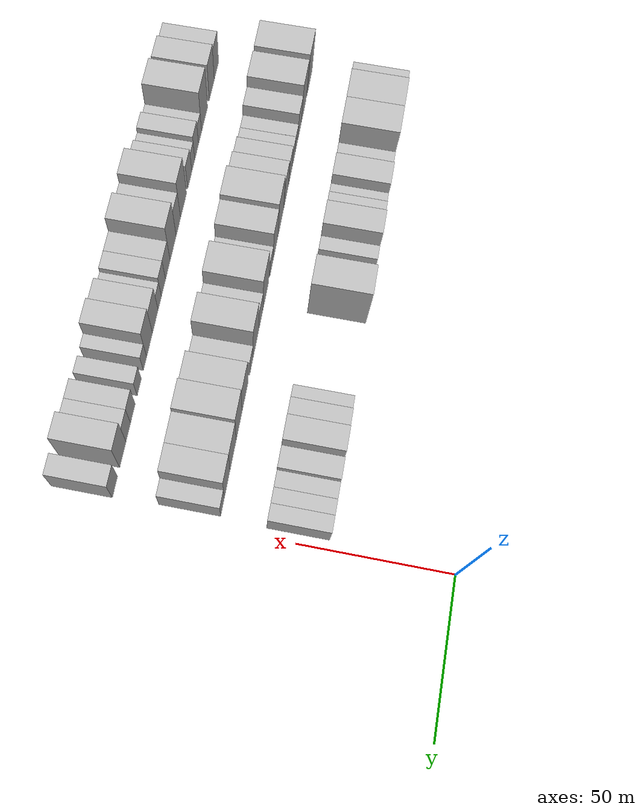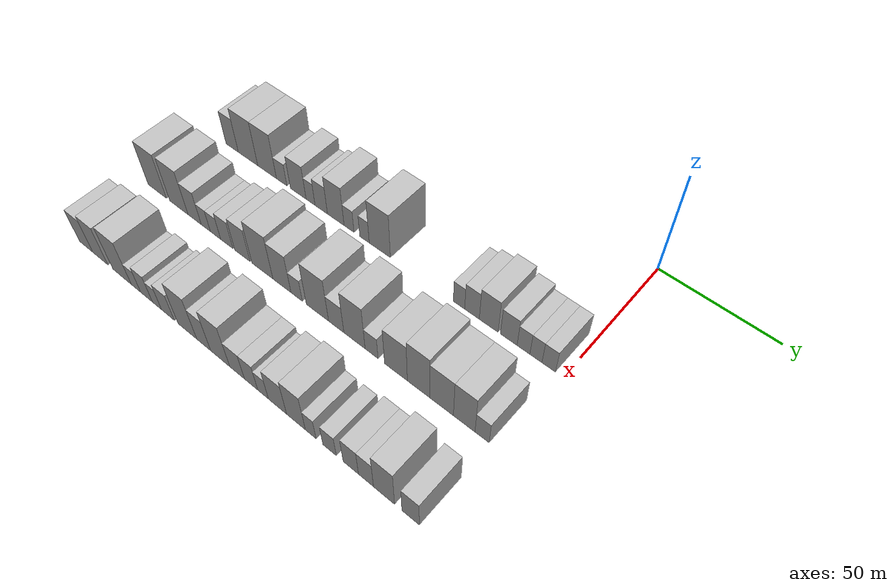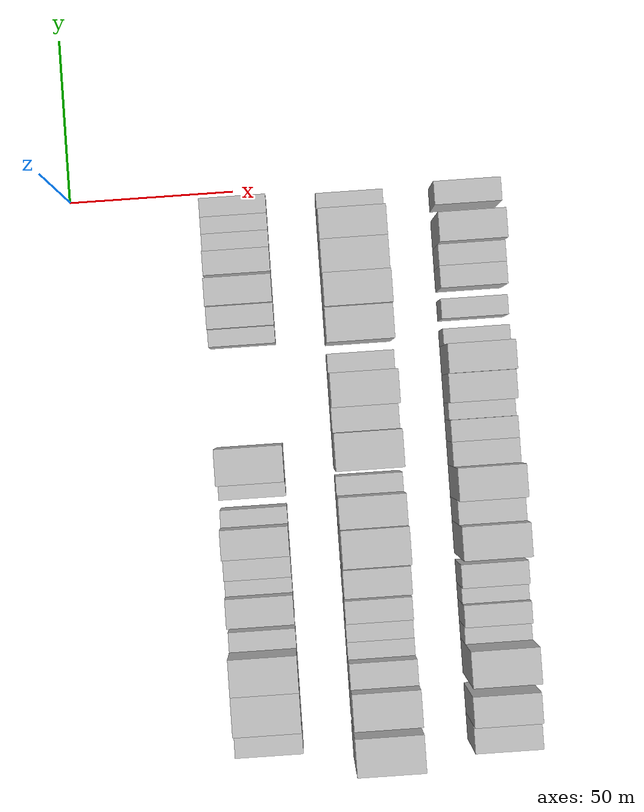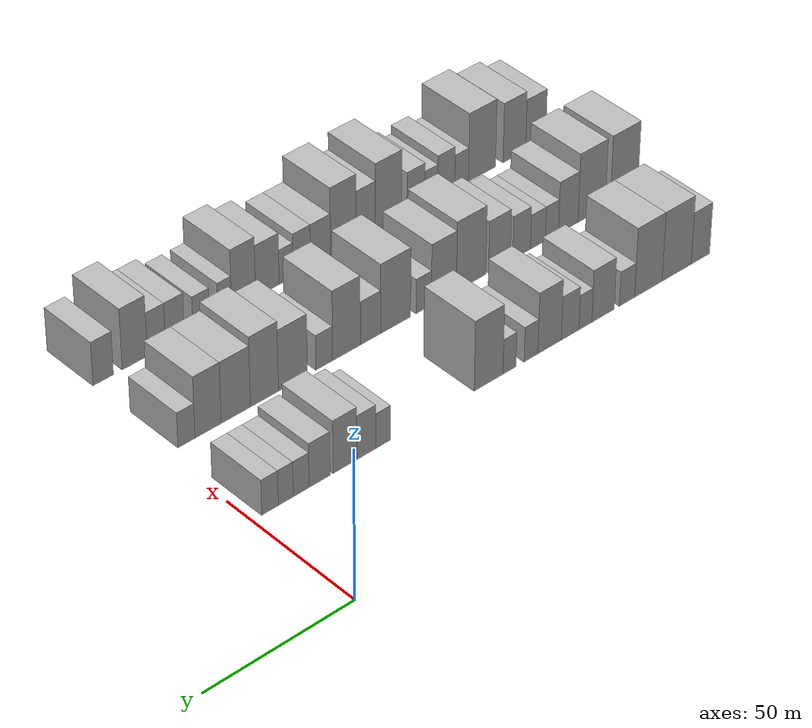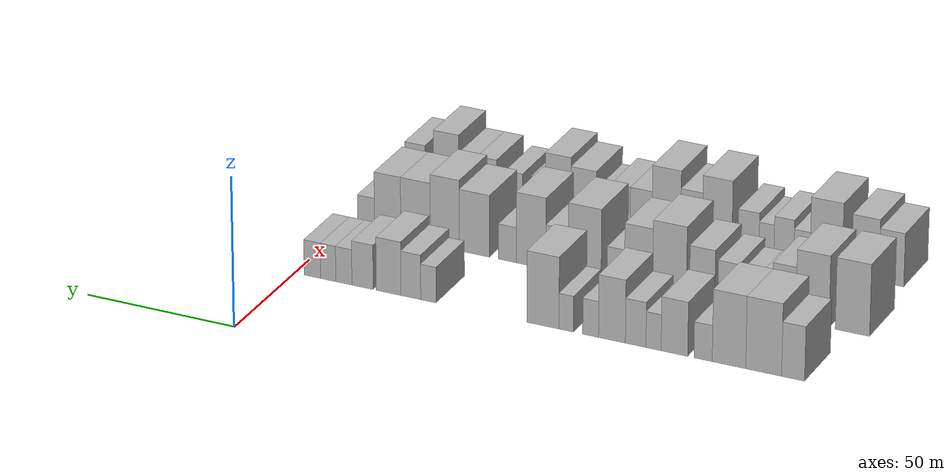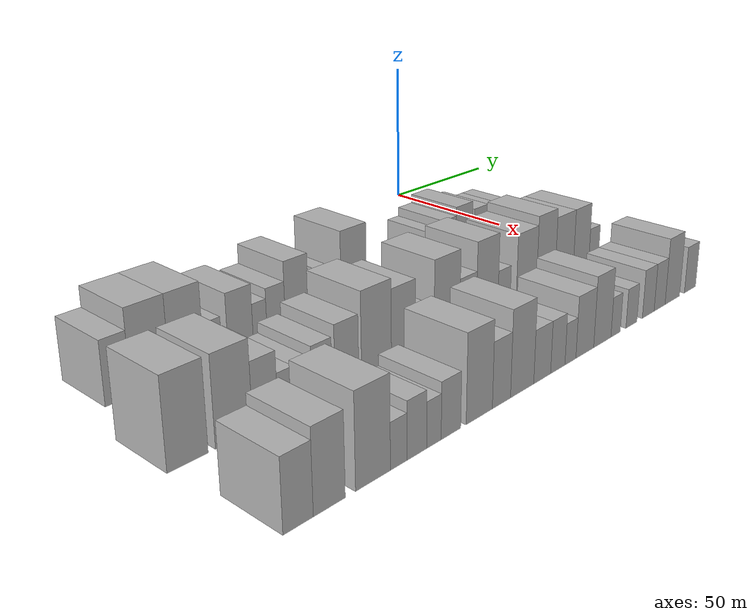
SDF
<sdf version="1.6">
 <world name="default">
  <model name="building_23">
   <static>1</static>
   <pose>50.0000 -164.6802 0 0.000000 0.000000 0.000000</pose>
   <link name="link">
    <pose>0 0 9.00 0 0 0</pose>
    <collision name="collision"><geometry><box><size>20.0000 7.3603 18.0000</size></box></geometry></collision>
    <visual name="visual">
     <cast_shadows>0</cast_shadows>
     <geometry><box><size>20.0000 7.3603 18.0000</size></box></geometry>
     <material>
      <script>
       <uri>model://HANNAS_wall/materials/scripts</uri>
       <uri>model://HANNAS_wall/materials/textures</uri>
       <name>vrc/HANNAS_wall</name>
      </script>
     </material>
    </visual>
   </link>
  </model>
  <model name="building_24">
   <static>1</static>
   <pose>50.0000 -155.2501 0 0.000000 0.000000 0.000000</pose>
   <link name="link">
    <pose>0 0 12.00 0 0 0</pose>
    <collision name="collision"><geometry><box><size>20.0000 11.4999 24.0000</size></box></geometry></collision>
    <visual name="visual">
     <cast_shadows>0</cast_shadows>
     <geometry><box><size>20.0000 11.4999 24.0000</size></box></geometry>
     <material>
      <script>
       <uri>model://HANNAS_wall/materials/scripts</uri>
       <uri>model://HANNAS_wall/materials/textures</uri>
       <name>vrc/HANNAS_wall</name>
      </script>
     </material>
    </visual>
   </link>
  </model>
  <model name="building_25">
   <static>1</static>
   <pose>50.0000 -144.0973 0 0.000000 0.000000 0.000000</pose>
   <link name="link">
    <pose>0 0 12.00 0 0 0</pose>
    <collision name="collision"><geometry><box><size>20.0000 10.8057 24.0000</size></box></geometry></collision>
    <visual name="visual">
     <cast_shadows>0</cast_shadows>
     <geometry><box><size>20.0000 10.8057 24.0000</size></box></geometry>
     <material>
      <script>
       <uri>model://HANNAS_wall/materials/scripts</uri>
       <uri>model://HANNAS_wall/materials/textures</uri>
       <name>vrc/HANNAS_wall</name>
      </script>
     </material>
    </visual>
   </link>
  </model>
  <model name="building_26">
   <static>1</static>
   <pose>50.0000 -135.7476 0 0.000000 0.000000 0.000000</pose>
   <link name="link">
    <pose>0 0 6.00 0 0 0</pose>
    <collision name="collision"><geometry><box><size>20.0000 5.8939 12.0000</size></box></geometry></collision>
    <visual name="visual">
     <cast_shadows>0</cast_shadows>
     <geometry><box><size>20.0000 5.8939 12.0000</size></box></geometry>
     <material>
      <script>
       <uri>model://HANNAS_wall/materials/scripts</uri>
       <uri>model://HANNAS_wall/materials/textures</uri>
       <name>vrc/HANNAS_wall</name>
      </script>
     </material>
    </visual>
   </link>
  </model>
  <model name="building_27">
   <static>1</static>
   <pose>50.0000 -126.4780 0 0.000000 0.000000 0.000000</pose>
   <link name="link">
    <pose>0 0 9.00 0 0 0</pose>
    <collision name="collision"><geometry><box><size>20.0000 8.6452 18.0000</size></box></geometry></collision>
    <visual name="visual">
     <cast_shadows>0</cast_shadows>
     <geometry><box><size>20.0000 8.6452 18.0000</size></box></geometry>
     <material>
      <script>
       <uri>model://HANNAS_wall/materials/scripts</uri>
       <uri>model://HANNAS_wall/materials/textures</uri>
       <name>vrc/HANNAS_wall</name>
      </script>
     </material>
    </visual>
   </link>
  </model>
  <model name="building_28">
   <static>1</static>
   <pose>50.0000 -119.6944 0 0.000000 0.000000 0.000000</pose>
   <link name="link">
    <pose>0 0 6.00 0 0 0</pose>
    <collision name="collision"><geometry><box><size>20.0000 4.9221 12.0000</size></box></geometry></collision>
    <visual name="visual">
     <cast_shadows>0</cast_shadows>
     <geometry><box><size>20.0000 4.9221 12.0000</size></box></geometry>
     <material>
      <script>
       <uri>model://HANNAS_wall/materials/scripts</uri>
       <uri>model://HANNAS_wall/materials/textures</uri>
       <name>vrc/HANNAS_wall</name>
      </script>
     </material>
    </visual>
   </link>
  </model>
  <model name="building_29">
   <static>1</static>
   <pose>50.0000 -113.8767 0 0.000000 0.000000 0.000000</pose>
   <link name="link">
    <pose>0 0 7.50 0 0 0</pose>
    <collision name="collision"><geometry><box><size>20.0000 6.7132 15.0000</size></box></geometry></collision>
    <visual name="visual">
     <cast_shadows>0</cast_shadows>
     <geometry><box><size>20.0000 6.7132 15.0000</size></box></geometry>
     <material>
      <script>
       <uri>model://HANNAS_wall/materials/scripts</uri>
       <uri>model://HANNAS_wall/materials/textures</uri>
       <name>vrc/HANNAS_wall</name>
      </script>
     </material>
    </visual>
   </link>
  </model>
  <model name="building_30">
   <static>1</static>
   <pose>50.0000 -106.1210 0 0.000000 0.000000 0.000000</pose>
   <link name="link">
    <pose>0 0 10.50 0 0 0</pose>
    <collision name="collision"><geometry><box><size>20.0000 8.7982 21.0000</size></box></geometry></collision>
    <visual name="visual">
     <cast_shadows>0</cast_shadows>
     <geometry><box><size>20.0000 8.7982 21.0000</size></box></geometry>
     <material>
      <script>
       <uri>model://HANNAS_wall/materials/scripts</uri>
       <uri>model://HANNAS_wall/materials/textures</uri>
       <name>vrc/HANNAS_wall</name>
      </script>
     </material>
    </visual>
   </link>
  </model>
  <model name="building_31">
   <static>1</static>
   <pose>50.0000 -99.1354 0 0.000000 0.000000 0.000000</pose>
   <link name="link">
    <pose>0 0 6.00 0 0 0</pose>
    <collision name="collision"><geometry><box><size>20.0000 5.1730 12.0000</size></box></geometry></collision>
    <visual name="visual">
     <cast_shadows>0</cast_shadows>
     <geometry><box><size>20.0000 5.1730 12.0000</size></box></geometry>
     <material>
      <script>
       <uri>model://HANNAS_wall/materials/scripts</uri>
       <uri>model://HANNAS_wall/materials/textures</uri>
       <name>vrc/HANNAS_wall</name>
      </script>
     </material>
    </visual>
   </link>
  </model>
  <model name="building_32">
   <static>1</static>
   <pose>50.0000 -91.1414 0 0.000000 0.000000 0.000000</pose>
   <link name="link">
    <pose>0 0 6.00 0 0 0</pose>
    <collision name="collision"><geometry><box><size>20.0000 4.8150 12.0000</size></box></geometry></collision>
    <visual name="visual">
     <cast_shadows>0</cast_shadows>
     <geometry><box><size>20.0000 4.8150 12.0000</size></box></geometry>
     <material>
      <script>
       <uri>model://HANNAS_wall/materials/scripts</uri>
       <uri>model://HANNAS_wall/materials/textures</uri>
       <name>vrc/HANNAS_wall</name>
      </script>
     </material>
    </visual>
   </link>
  </model>
  <model name="building_33">
   <static>1</static>
   <pose>50.0000 -83.4060 0 0.000000 0.000000 0.000000</pose>
   <link name="link">
    <pose>0 0 12.00 0 0 0</pose>
    <collision name="collision"><geometry><box><size>20.0000 10.6557 24.0000</size></box></geometry></collision>
    <visual name="visual">
     <cast_shadows>0</cast_shadows>
     <geometry><box><size>20.0000 10.6557 24.0000</size></box></geometry>
     <material>
      <script>
       <uri>model://HANNAS_wall/materials/scripts</uri>
       <uri>model://HANNAS_wall/materials/textures</uri>
       <name>vrc/HANNAS_wall</name>
      </script>
     </material>
    </visual>
   </link>
  </model>
  <model name="building_34">
   <static>1</static>
   <pose>50.0000 -45.3212 0 0.000000 0.000000 0.000000</pose>
   <link name="link">
    <pose>0 0 6.00 0 0 0</pose>
    <collision name="collision"><geometry><box><size>20.0000 5.1713 12.0000</size></box></geometry></collision>
    <visual name="visual">
     <cast_shadows>0</cast_shadows>
     <geometry><box><size>20.0000 5.1713 12.0000</size></box></geometry>
     <material>
      <script>
       <uri>model://HANNAS_wall/materials/scripts</uri>
       <uri>model://HANNAS_wall/materials/textures</uri>
       <name>vrc/HANNAS_wall</name>
      </script>
     </material>
    </visual>
   </link>
  </model>
  <model name="building_35">
   <static>1</static>
   <pose>50.0000 -39.4127 0 0.000000 0.000000 0.000000</pose>
   <link name="link">
    <pose>0 0 7.50 0 0 0</pose>
    <collision name="collision"><geometry><box><size>20.0000 6.6456 15.0000</size></box></geometry></collision>
    <visual name="visual">
     <cast_shadows>0</cast_shadows>
     <geometry><box><size>20.0000 6.6456 15.0000</size></box></geometry>
     <material>
      <script>
       <uri>model://HANNAS_wall/materials/scripts</uri>
       <uri>model://HANNAS_wall/materials/textures</uri>
       <name>vrc/HANNAS_wall</name>
      </script>
     </material>
    </visual>
   </link>
  </model>
  <model name="building_36">
   <static>1</static>
   <pose>50.0000 -31.9131 0 0.000000 0.000000 0.000000</pose>
   <link name="link">
    <pose>0 0 9.00 0 0 0</pose>
    <collision name="collision"><geometry><box><size>20.0000 8.3536 18.0000</size></box></geometry></collision>
    <visual name="visual">
     <cast_shadows>0</cast_shadows>
     <geometry><box><size>20.0000 8.3536 18.0000</size></box></geometry>
     <material>
      <script>
       <uri>model://HANNAS_wall/materials/scripts</uri>
       <uri>model://HANNAS_wall/materials/textures</uri>
       <name>vrc/HANNAS_wall</name>
      </script>
     </material>
    </visual>
   </link>
  </model>
  <model name="building_37">
   <static>1</static>
   <pose>50.0000 -23.1117 0 0.000000 0.000000 0.000000</pose>
   <link name="link">
    <pose>0 0 7.50 0 0 0</pose>
    <collision name="collision"><geometry><box><size>20.0000 7.2491 15.0000</size></box></geometry></collision>
    <visual name="visual">
     <cast_shadows>0</cast_shadows>
     <geometry><box><size>20.0000 7.2491 15.0000</size></box></geometry>
     <material>
      <script>
       <uri>model://HANNAS_wall/materials/scripts</uri>
       <uri>model://HANNAS_wall/materials/textures</uri>
       <name>vrc/HANNAS_wall</name>
      </script>
     </material>
    </visual>
   </link>
  </model>
  <model name="building_38">
   <static>1</static>
   <pose>50.0000 -16.7478 0 0.000000 0.000000 0.000000</pose>
   <link name="link">
    <pose>0 0 6.00 0 0 0</pose>
    <collision name="collision"><geometry><box><size>20.0000 5.4787 12.0000</size></box></geometry></collision>
    <visual name="visual">
     <cast_shadows>0</cast_shadows>
     <geometry><box><size>20.0000 5.4787 12.0000</size></box></geometry>
     <material>
      <script>
       <uri>model://HANNAS_wall/materials/scripts</uri>
       <uri>model://HANNAS_wall/materials/textures</uri>
       <name>vrc/HANNAS_wall</name>
      </script>
     </material>
    </visual>
   </link>
  </model>
  <model name="building_39">
   <static>1</static>
   <pose>50.0000 -11.4639 0 0.000000 0.000000 0.000000</pose>
   <link name="link">
    <pose>0 0 6.00 0 0 0</pose>
    <collision name="collision"><geometry><box><size>20.0000 5.0892 12.0000</size></box></geometry></collision>
    <visual name="visual">
     <cast_shadows>0</cast_shadows>
     <geometry><box><size>20.0000 5.0892 12.0000</size></box></geometry>
     <material>
      <script>
       <uri>model://HANNAS_wall/materials/scripts</uri>
       <uri>model://HANNAS_wall/materials/textures</uri>
       <name>vrc/HANNAS_wall</name>
      </script>
     </material>
    </visual>
   </link>
  </model>
  <model name="building_40">
   <static>1</static>
   <pose>50.0000 -6.0964 0 0.000000 0.000000 0.000000</pose>
   <link name="link">
    <pose>0 0 6.00 0 0 0</pose>
    <collision name="collision"><geometry><box><size>20.0000 5.6457 12.0000</size></box></geometry></collision>
    <visual name="visual">
     <cast_shadows>0</cast_shadows>
     <geometry><box><size>20.0000 5.6457 12.0000</size></box></geometry>
     <material>
      <script>
       <uri>model://HANNAS_wall/materials/scripts</uri>
       <uri>model://HANNAS_wall/materials/textures</uri>
       <name>vrc/HANNAS_wall</name>
      </script>
     </material>
    </visual>
   </link>
  </model>
  <model name="building_100">
   <static>1</static>
   <pose>85.0000 -169.3282 0 0.000000 0.000000 0.000000</pose>
   <link name="link">
    <pose>0 0 12.00 0 0 0</pose>
    <collision name="collision"><geometry><box><size>20.0000 11.0988 24.0000</size></box></geometry></collision>
    <visual name="visual">
     <cast_shadows>0</cast_shadows>
     <geometry><box><size>20.0000 11.0988 24.0000</size></box></geometry>
     <material>
      <script>
       <uri>model://HANNAS_wall/materials/scripts</uri>
       <uri>model://HANNAS_wall/materials/textures</uri>
       <name>vrc/HANNAS_wall</name>
      </script>
     </material>
    </visual>
   </link>
  </model>
  <model name="building_101">
   <static>1</static>
   <pose>85.0000 -156.3685 0 0.000000 0.000000 0.000000</pose>
   <link name="link">
    <pose>0 0 12.00 0 0 0</pose>
    <collision name="collision"><geometry><box><size>20.0000 10.8207 24.0000</size></box></geometry></collision>
    <visual name="visual">
     <cast_shadows>0</cast_shadows>
     <geometry><box><size>20.0000 10.8207 24.0000</size></box></geometry>
     <material>
      <script>
       <uri>model://HANNAS_wall/materials/scripts</uri>
       <uri>model://HANNAS_wall/materials/textures</uri>
       <name>vrc/HANNAS_wall</name>
      </script>
     </material>
    </visual>
   </link>
  </model>
  <model name="building_102">
   <static>1</static>
   <pose>85.0000 -147.1111 0 0.000000 0.000000 0.000000</pose>
   <link name="link">
    <pose>0 0 9.00 0 0 0</pose>
    <collision name="collision"><geometry><box><size>20.0000 7.6941 18.0000</size></box></geometry></collision>
    <visual name="visual">
     <cast_shadows>0</cast_shadows>
     <geometry><box><size>20.0000 7.6941 18.0000</size></box></geometry>
     <material>
      <script>
       <uri>model://HANNAS_wall/materials/scripts</uri>
       <uri>model://HANNAS_wall/materials/textures</uri>
       <name>vrc/HANNAS_wall</name>
      </script>
     </material>
    </visual>
   </link>
  </model>
  <model name="building_103">
   <static>1</static>
   <pose>85.0000 -140.6866 0 0.000000 0.000000 0.000000</pose>
   <link name="link">
    <pose>0 0 6.00 0 0 0</pose>
    <collision name="collision"><geometry><box><size>20.0000 5.1549 12.0000</size></box></geometry></collision>
    <visual name="visual">
     <cast_shadows>0</cast_shadows>
     <geometry><box><size>20.0000 5.1549 12.0000</size></box></geometry>
     <material>
      <script>
       <uri>model://HANNAS_wall/materials/scripts</uri>
       <uri>model://HANNAS_wall/materials/textures</uri>
       <name>vrc/HANNAS_wall</name>
      </script>
     </material>
    </visual>
   </link>
  </model>
  <model name="building_104">
   <static>1</static>
   <pose>85.0000 -135.2049 0 0.000000 0.000000 0.000000</pose>
   <link name="link">
    <pose>0 0 6.00 0 0 0</pose>
    <collision name="collision"><geometry><box><size>20.0000 5.8084 12.0000</size></box></geometry></collision>
    <visual name="visual">
     <cast_shadows>0</cast_shadows>
     <geometry><box><size>20.0000 5.8084 12.0000</size></box></geometry>
     <material>
      <script>
       <uri>model://HANNAS_wall/materials/scripts</uri>
       <uri>model://HANNAS_wall/materials/textures</uri>
       <name>vrc/HANNAS_wall</name>
      </script>
     </material>
    </visual>
   </link>
  </model>
  <model name="building_105">
   <static>1</static>
   <pose>85.0000 -128.8961 0 0.000000 0.000000 0.000000</pose>
   <link name="link">
    <pose>0 0 7.50 0 0 0</pose>
    <collision name="collision"><geometry><box><size>20.0000 6.8091 15.0000</size></box></geometry></collision>
    <visual name="visual">
     <cast_shadows>0</cast_shadows>
     <geometry><box><size>20.0000 6.8091 15.0000</size></box></geometry>
     <material>
      <script>
       <uri>model://HANNAS_wall/materials/scripts</uri>
       <uri>model://HANNAS_wall/materials/textures</uri>
       <name>vrc/HANNAS_wall</name>
      </script>
     </material>
    </visual>
   </link>
  </model>
  <model name="building_106">
   <static>1</static>
   <pose>85.0000 -120.3109 0 0.000000 0.000000 0.000000</pose>
   <link name="link">
    <pose>0 0 9.00 0 0 0</pose>
    <collision name="collision"><geometry><box><size>20.0000 8.3613 18.0000</size></box></geometry></collision>
    <visual name="visual">
     <cast_shadows>0</cast_shadows>
     <geometry><box><size>20.0000 8.3613 18.0000</size></box></geometry>
     <material>
      <script>
       <uri>model://HANNAS_wall/materials/scripts</uri>
       <uri>model://HANNAS_wall/materials/textures</uri>
       <name>vrc/HANNAS_wall</name>
      </script>
     </material>
    </visual>
   </link>
  </model>
  <model name="building_107">
   <static>1</static>
   <pose>85.0000 -109.5579 0 0.000000 0.000000 0.000000</pose>
   <link name="link">
    <pose>0 0 12.00 0 0 0</pose>
    <collision name="collision"><geometry><box><size>20.0000 11.1447 24.0000</size></box></geometry></collision>
    <visual name="visual">
     <cast_shadows>0</cast_shadows>
     <geometry><box><size>20.0000 11.1447 24.0000</size></box></geometry>
     <material>
      <script>
       <uri>model://HANNAS_wall/materials/scripts</uri>
       <uri>model://HANNAS_wall/materials/textures</uri>
       <name>vrc/HANNAS_wall</name>
      </script>
     </material>
    </visual>
   </link>
  </model>
  <model name="building_108">
   <static>1</static>
   <pose>85.0000 -99.3019 0 0.000000 0.000000 0.000000</pose>
   <link name="link">
    <pose>0 0 10.50 0 0 0</pose>
    <collision name="collision"><geometry><box><size>20.0000 9.3673 21.0000</size></box></geometry></collision>
    <visual name="visual">
     <cast_shadows>0</cast_shadows>
     <geometry><box><size>20.0000 9.3673 21.0000</size></box></geometry>
     <material>
      <script>
       <uri>model://HANNAS_wall/materials/scripts</uri>
       <uri>model://HANNAS_wall/materials/textures</uri>
       <name>vrc/HANNAS_wall</name>
      </script>
     </material>
    </visual>
   </link>
  </model>
  <model name="building_109">
   <static>1</static>
   <pose>85.0000 -91.7395 0 0.000000 0.000000 0.000000</pose>
   <link name="link">
    <pose>0 0 6.00 0 0 0</pose>
    <collision name="collision"><geometry><box><size>20.0000 5.7574 12.0000</size></box></geometry></collision>
    <visual name="visual">
     <cast_shadows>0</cast_shadows>
     <geometry><box><size>20.0000 5.7574 12.0000</size></box></geometry>
     <material>
      <script>
       <uri>model://HANNAS_wall/materials/scripts</uri>
       <uri>model://HANNAS_wall/materials/textures</uri>
       <name>vrc/HANNAS_wall</name>
      </script>
     </material>
    </visual>
   </link>
  </model>
  <model name="building_110">
   <static>1</static>
   <pose>85.0000 -81.3385 0 0.000000 0.000000 0.000000</pose>
   <link name="link">
    <pose>0 0 12.00 0 0 0</pose>
    <collision name="collision"><geometry><box><size>20.0000 11.0445 24.0000</size></box></geometry></collision>
    <visual name="visual">
     <cast_shadows>0</cast_shadows>
     <geometry><box><size>20.0000 11.0445 24.0000</size></box></geometry>
     <material>
      <script>
       <uri>model://HANNAS_wall/materials/scripts</uri>
       <uri>model://HANNAS_wall/materials/textures</uri>
       <name>vrc/HANNAS_wall</name>
      </script>
     </material>
    </visual>
   </link>
  </model>
  <model name="building_111">
   <static>1</static>
   <pose>85.0000 -72.1030 0 0.000000 0.000000 0.000000</pose>
   <link name="link">
    <pose>0 0 7.50 0 0 0</pose>
    <collision name="collision"><geometry><box><size>20.0000 7.4266 15.0000</size></box></geometry></collision>
    <visual name="visual">
     <cast_shadows>0</cast_shadows>
     <geometry><box><size>20.0000 7.4266 15.0000</size></box></geometry>
     <material>
      <script>
       <uri>model://HANNAS_wall/materials/scripts</uri>
       <uri>model://HANNAS_wall/materials/textures</uri>
       <name>vrc/HANNAS_wall</name>
      </script>
     </material>
    </visual>
   </link>
  </model>
  <model name="building_112">
   <static>1</static>
   <pose>85.0000 -63.3589 0 0.000000 0.000000 0.000000</pose>
   <link name="link">
    <pose>0 0 12.00 0 0 0</pose>
    <collision name="collision"><geometry><box><size>20.0000 10.0616 24.0000</size></box></geometry></collision>
    <visual name="visual">
     <cast_shadows>0</cast_shadows>
     <geometry><box><size>20.0000 10.0616 24.0000</size></box></geometry>
     <material>
      <script>
       <uri>model://HANNAS_wall/materials/scripts</uri>
       <uri>model://HANNAS_wall/materials/textures</uri>
       <name>vrc/HANNAS_wall</name>
      </script>
     </material>
    </visual>
   </link>
  </model>
  <model name="building_113">
   <static>1</static>
   <pose>85.0000 -55.3316 0 0.000000 0.000000 0.000000</pose>
   <link name="link">
    <pose>0 0 6.00 0 0 0</pose>
    <collision name="collision"><geometry><box><size>20.0000 5.9931 12.0000</size></box></geometry></collision>
    <visual name="visual">
     <cast_shadows>0</cast_shadows>
     <geometry><box><size>20.0000 5.9931 12.0000</size></box></geometry>
     <material>
      <script>
       <uri>model://HANNAS_wall/materials/scripts</uri>
       <uri>model://HANNAS_wall/materials/textures</uri>
       <name>vrc/HANNAS_wall</name>
      </script>
     </material>
    </visual>
   </link>
  </model>
  <model name="building_114">
   <static>1</static>
   <pose>85.0000 -44.1902 0 0.000000 0.000000 0.000000</pose>
   <link name="link">
    <pose>0 0 10.50 0 0 0</pose>
    <collision name="collision"><geometry><box><size>20.0000 10.2897 21.0000</size></box></geometry></collision>
    <visual name="visual">
     <cast_shadows>0</cast_shadows>
     <geometry><box><size>20.0000 10.2897 21.0000</size></box></geometry>
     <material>
      <script>
       <uri>model://HANNAS_wall/materials/scripts</uri>
       <uri>model://HANNAS_wall/materials/textures</uri>
       <name>vrc/HANNAS_wall</name>
      </script>
     </material>
    </visual>
   </link>
  </model>
  <model name="building_115">
   <static>1</static>
   <pose>85.0000 -34.1086 0 0.000000 0.000000 0.000000</pose>
   <link name="link">
    <pose>0 0 12.00 0 0 0</pose>
    <collision name="collision"><geometry><box><size>20.0000 9.8735 24.0000</size></box></geometry></collision>
    <visual name="visual">
     <cast_shadows>0</cast_shadows>
     <geometry><box><size>20.0000 9.8735 24.0000</size></box></geometry>
     <material>
      <script>
       <uri>model://HANNAS_wall/materials/scripts</uri>
       <uri>model://HANNAS_wall/materials/textures</uri>
       <name>vrc/HANNAS_wall</name>
      </script>
     </material>
    </visual>
   </link>
  </model>
  <model name="building_116">
   <static>1</static>
   <pose>85.0000 -24.1066 0 0.000000 0.000000 0.000000</pose>
   <link name="link">
    <pose>0 0 10.50 0 0 0</pose>
    <collision name="collision"><geometry><box><size>20.0000 10.1305 21.0000</size></box></geometry></collision>
    <visual name="visual">
     <cast_shadows>0</cast_shadows>
     <geometry><box><size>20.0000 10.1305 21.0000</size></box></geometry>
     <material>
      <script>
       <uri>model://HANNAS_wall/materials/scripts</uri>
       <uri>model://HANNAS_wall/materials/textures</uri>
       <name>vrc/HANNAS_wall</name>
      </script>
     </material>
    </visual>
   </link>
  </model>
  <model name="building_117">
   <static>1</static>
   <pose>85.0000 -14.5325 0 0.000000 0.000000 0.000000</pose>
   <link name="link">
    <pose>0 0 10.50 0 0 0</pose>
    <collision name="collision"><geometry><box><size>20.0000 9.0177 21.0000</size></box></geometry></collision>
    <visual name="visual">
     <cast_shadows>0</cast_shadows>
     <geometry><box><size>20.0000 9.0177 21.0000</size></box></geometry>
     <material>
      <script>
       <uri>model://HANNAS_wall/materials/scripts</uri>
       <uri>model://HANNAS_wall/materials/textures</uri>
       <name>vrc/HANNAS_wall</name>
      </script>
     </material>
    </visual>
   </link>
  </model>
  <model name="building_118">
   <static>1</static>
   <pose>85.0000 -7.1090 0 0.000000 0.000000 0.000000</pose>
   <link name="link">
    <pose>0 0 6.00 0 0 0</pose>
    <collision name="collision"><geometry><box><size>20.0000 5.8294 12.0000</size></box></geometry></collision>
    <visual name="visual">
     <cast_shadows>0</cast_shadows>
     <geometry><box><size>20.0000 5.8294 12.0000</size></box></geometry>
     <material>
      <script>
       <uri>model://HANNAS_wall/materials/scripts</uri>
       <uri>model://HANNAS_wall/materials/textures</uri>
       <name>vrc/HANNAS_wall</name>
      </script>
     </material>
    </visual>
   </link>
  </model>
  <model name="building_172">
   <static>1</static>
   <pose>120.0000 -167.8748 0 0.000000 0.000000 0.000000</pose>
   <link name="link">
    <pose>0 0 9.00 0 0 0</pose>
    <collision name="collision"><geometry><box><size>20.0000 8.1332 18.0000</size></box></geometry></collision>
    <visual name="visual">
     <cast_shadows>0</cast_shadows>
     <geometry><box><size>20.0000 8.1332 18.0000</size></box></geometry>
     <material>
      <script>
       <uri>model://HANNAS_wall/materials/scripts</uri>
       <uri>model://HANNAS_wall/materials/textures</uri>
       <name>vrc/HANNAS_wall</name>
      </script>
     </material>
    </visual>
   </link>
  </model>
  <model name="building_173">
   <static>1</static>
   <pose>120.0000 -159.2900 0 0.000000 0.000000 0.000000</pose>
   <link name="link">
    <pose>0 0 10.50 0 0 0</pose>
    <collision name="collision"><geometry><box><size>20.0000 9.0364 21.0000</size></box></geometry></collision>
    <visual name="visual">
     <cast_shadows>0</cast_shadows>
     <geometry><box><size>20.0000 9.0364 21.0000</size></box></geometry>
     <material>
      <script>
       <uri>model://HANNAS_wall/materials/scripts</uri>
       <uri>model://HANNAS_wall/materials/textures</uri>
       <name>vrc/HANNAS_wall</name>
      </script>
     </material>
    </visual>
   </link>
  </model>
  <model name="building_174">
   <static>1</static>
   <pose>120.0000 -146.4342 0 0.000000 0.000000 0.000000</pose>
   <link name="link">
    <pose>0 0 12.00 0 0 0</pose>
    <collision name="collision"><geometry><box><size>20.0000 10.6753 24.0000</size></box></geometry></collision>
    <visual name="visual">
     <cast_shadows>0</cast_shadows>
     <geometry><box><size>20.0000 10.6753 24.0000</size></box></geometry>
     <material>
      <script>
       <uri>model://HANNAS_wall/materials/scripts</uri>
       <uri>model://HANNAS_wall/materials/textures</uri>
       <name>vrc/HANNAS_wall</name>
      </script>
     </material>
    </visual>
   </link>
  </model>
  <model name="building_175">
   <static>1</static>
   <pose>120.0000 -138.4185 0 0.000000 0.000000 0.000000</pose>
   <link name="link">
    <pose>0 0 6.00 0 0 0</pose>
    <collision name="collision"><geometry><box><size>20.0000 5.3561 12.0000</size></box></geometry></collision>
    <visual name="visual">
     <cast_shadows>0</cast_shadows>
     <geometry><box><size>20.0000 5.3561 12.0000</size></box></geometry>
     <material>
      <script>
       <uri>model://HANNAS_wall/materials/scripts</uri>
       <uri>model://HANNAS_wall/materials/textures</uri>
       <name>vrc/HANNAS_wall</name>
      </script>
     </material>
    </visual>
   </link>
  </model>
  <model name="building_176">
   <static>1</static>
   <pose>120.0000 -132.4523 0 0.000000 0.000000 0.000000</pose>
   <link name="link">
    <pose>0 0 7.50 0 0 0</pose>
    <collision name="collision"><geometry><box><size>20.0000 6.5764 15.0000</size></box></geometry></collision>
    <visual name="visual">
     <cast_shadows>0</cast_shadows>
     <geometry><box><size>20.0000 6.5764 15.0000</size></box></geometry>
     <material>
      <script>
       <uri>model://HANNAS_wall/materials/scripts</uri>
       <uri>model://HANNAS_wall/materials/textures</uri>
       <name>vrc/HANNAS_wall</name>
      </script>
     </material>
    </visual>
   </link>
  </model>
  <model name="building_177">
   <static>1</static>
   <pose>120.0000 -126.6715 0 0.000000 0.000000 0.000000</pose>
   <link name="link">
    <pose>0 0 6.00 0 0 0</pose>
    <collision name="collision"><geometry><box><size>20.0000 4.9851 12.0000</size></box></geometry></collision>
    <visual name="visual">
     <cast_shadows>0</cast_shadows>
     <geometry><box><size>20.0000 4.9851 12.0000</size></box></geometry>
     <material>
      <script>
       <uri>model://HANNAS_wall/materials/scripts</uri>
       <uri>model://HANNAS_wall/materials/textures</uri>
       <name>vrc/HANNAS_wall</name>
      </script>
     </material>
    </visual>
   </link>
  </model>
  <model name="building_178">
   <static>1</static>
   <pose>120.0000 -120.6826 0 0.000000 0.000000 0.000000</pose>
   <link name="link">
    <pose>0 0 7.50 0 0 0</pose>
    <collision name="collision"><geometry><box><size>20.0000 6.9928 15.0000</size></box></geometry></collision>
    <visual name="visual">
     <cast_shadows>0</cast_shadows>
     <geometry><box><size>20.0000 6.9928 15.0000</size></box></geometry>
     <material>
      <script>
       <uri>model://HANNAS_wall/materials/scripts</uri>
       <uri>model://HANNAS_wall/materials/textures</uri>
       <name>vrc/HANNAS_wall</name>
      </script>
     </material>
    </visual>
   </link>
  </model>
  <model name="building_179">
   <static>1</static>
   <pose>120.0000 -110.2126 0 0.000000 0.000000 0.000000</pose>
   <link name="link">
    <pose>0 0 12.00 0 0 0</pose>
    <collision name="collision"><geometry><box><size>20.0000 9.9472 24.0000</size></box></geometry></collision>
    <visual name="visual">
     <cast_shadows>0</cast_shadows>
     <geometry><box><size>20.0000 9.9472 24.0000</size></box></geometry>
     <material>
      <script>
       <uri>model://HANNAS_wall/materials/scripts</uri>
       <uri>model://HANNAS_wall/materials/textures</uri>
       <name>vrc/HANNAS_wall</name>
      </script>
     </material>
    </visual>
   </link>
  </model>
  <model name="building_180">
   <static>1</static>
   <pose>120.0000 -101.6165 0 0.000000 0.000000 0.000000</pose>
   <link name="link">
    <pose>0 0 9.00 0 0 0</pose>
    <collision name="collision"><geometry><box><size>20.0000 7.2450 18.0000</size></box></geometry></collision>
    <visual name="visual">
     <cast_shadows>0</cast_shadows>
     <geometry><box><size>20.0000 7.2450 18.0000</size></box></geometry>
     <material>
      <script>
       <uri>model://HANNAS_wall/materials/scripts</uri>
       <uri>model://HANNAS_wall/materials/textures</uri>
       <name>vrc/HANNAS_wall</name>
      </script>
     </material>
    </visual>
   </link>
  </model>
  <model name="building_181">
   <static>1</static>
   <pose>120.0000 -93.1546 0 0.000000 0.000000 0.000000</pose>
   <link name="link">
    <pose>0 0 12.00 0 0 0</pose>
    <collision name="collision"><geometry><box><size>20.0000 9.6788 24.0000</size></box></geometry></collision>
    <visual name="visual">
     <cast_shadows>0</cast_shadows>
     <geometry><box><size>20.0000 9.6788 24.0000</size></box></geometry>
     <material>
      <script>
       <uri>model://HANNAS_wall/materials/scripts</uri>
       <uri>model://HANNAS_wall/materials/textures</uri>
       <name>vrc/HANNAS_wall</name>
      </script>
     </material>
    </visual>
   </link>
  </model>
  <model name="building_182">
   <static>1</static>
   <pose>120.0000 -84.6310 0 0.000000 0.000000 0.000000</pose>
   <link name="link">
    <pose>0 0 7.50 0 0 0</pose>
    <collision name="collision"><geometry><box><size>20.0000 7.3683 15.0000</size></box></geometry></collision>
    <visual name="visual">
     <cast_shadows>0</cast_shadows>
     <geometry><box><size>20.0000 7.3683 15.0000</size></box></geometry>
     <material>
      <script>
       <uri>model://HANNAS_wall/materials/scripts</uri>
       <uri>model://HANNAS_wall/materials/textures</uri>
       <name>vrc/HANNAS_wall</name>
      </script>
     </material>
    </visual>
   </link>
  </model>
  <model name="building_183">
   <static>1</static>
   <pose>120.0000 -77.7113 0 0.000000 0.000000 0.000000</pose>
   <link name="link">
    <pose>0 0 7.50 0 0 0</pose>
    <collision name="collision"><geometry><box><size>20.0000 6.4711 15.0000</size></box></geometry></collision>
    <visual name="visual">
     <cast_shadows>0</cast_shadows>
     <geometry><box><size>20.0000 6.4711 15.0000</size></box></geometry>
     <material>
      <script>
       <uri>model://HANNAS_wall/materials/scripts</uri>
       <uri>model://HANNAS_wall/materials/textures</uri>
       <name>vrc/HANNAS_wall</name>
      </script>
     </material>
    </visual>
   </link>
  </model>
  <model name="building_184">
   <static>1</static>
   <pose>120.0000 -71.9233 0 0.000000 0.000000 0.000000</pose>
   <link name="link">
    <pose>0 0 6.00 0 0 0</pose>
    <collision name="collision"><geometry><box><size>20.0000 5.1049 12.0000</size></box></geometry></collision>
    <visual name="visual">
     <cast_shadows>0</cast_shadows>
     <geometry><box><size>20.0000 5.1049 12.0000</size></box></geometry>
     <material>
      <script>
       <uri>model://HANNAS_wall/materials/scripts</uri>
       <uri>model://HANNAS_wall/materials/textures</uri>
       <name>vrc/HANNAS_wall</name>
      </script>
     </material>
    </visual>
   </link>
  </model>
  <model name="building_185">
   <static>1</static>
   <pose>120.0000 -65.0816 0 0.000000 0.000000 0.000000</pose>
   <link name="link">
    <pose>0 0 9.00 0 0 0</pose>
    <collision name="collision"><geometry><box><size>20.0000 8.5783 18.0000</size></box></geometry></collision>
    <visual name="visual">
     <cast_shadows>0</cast_shadows>
     <geometry><box><size>20.0000 8.5783 18.0000</size></box></geometry>
     <material>
      <script>
       <uri>model://HANNAS_wall/materials/scripts</uri>
       <uri>model://HANNAS_wall/materials/textures</uri>
       <name>vrc/HANNAS_wall</name>
      </script>
     </material>
    </visual>
   </link>
  </model>
  <model name="building_186">
   <static>1</static>
   <pose>120.0000 -56.4426 0 0.000000 0.000000 0.000000</pose>
   <link name="link">
    <pose>0 0 10.50 0 0 0</pose>
    <collision name="collision"><geometry><box><size>20.0000 8.6998 21.0000</size></box></geometry></collision>
    <visual name="visual">
     <cast_shadows>0</cast_shadows>
     <geometry><box><size>20.0000 8.6998 21.0000</size></box></geometry>
     <material>
      <script>
       <uri>model://HANNAS_wall/materials/scripts</uri>
       <uri>model://HANNAS_wall/materials/textures</uri>
       <name>vrc/HANNAS_wall</name>
      </script>
     </material>
    </visual>
   </link>
  </model>
  <model name="building_187">
   <static>1</static>
   <pose>120.0000 -49.6678 0 0.000000 0.000000 0.000000</pose>
   <link name="link">
    <pose>0 0 6.00 0 0 0</pose>
    <collision name="collision"><geometry><box><size>20.0000 4.8497 12.0000</size></box></geometry></collision>
    <visual name="visual">
     <cast_shadows>0</cast_shadows>
     <geometry><box><size>20.0000 4.8497 12.0000</size></box></geometry>
     <material>
      <script>
       <uri>model://HANNAS_wall/materials/scripts</uri>
       <uri>model://HANNAS_wall/materials/textures</uri>
       <name>vrc/HANNAS_wall</name>
      </script>
     </material>
    </visual>
   </link>
  </model>
  <model name="building_188">
   <static>1</static>
   <pose>120.0000 -41.2669 0 0.000000 0.000000 0.000000</pose>
   <link name="link">
    <pose>0 0 6.00 0 0 0</pose>
    <collision name="collision"><geometry><box><size>20.0000 5.9521 12.0000</size></box></geometry></collision>
    <visual name="visual">
     <cast_shadows>0</cast_shadows>
     <geometry><box><size>20.0000 5.9521 12.0000</size></box></geometry>
     <material>
      <script>
       <uri>model://HANNAS_wall/materials/scripts</uri>
       <uri>model://HANNAS_wall/materials/textures</uri>
       <name>vrc/HANNAS_wall</name>
      </script>
     </material>
    </visual>
   </link>
  </model>
  <model name="building_189">
   <static>1</static>
   <pose>120.0000 -31.9701 0 0.000000 0.000000 0.000000</pose>
   <link name="link">
    <pose>0 0 7.50 0 0 0</pose>
    <collision name="collision"><geometry><box><size>20.0000 6.6415 15.0000</size></box></geometry></collision>
    <visual name="visual">
     <cast_shadows>0</cast_shadows>
     <geometry><box><size>20.0000 6.6415 15.0000</size></box></geometry>
     <material>
      <script>
       <uri>model://HANNAS_wall/materials/scripts</uri>
       <uri>model://HANNAS_wall/materials/textures</uri>
       <name>vrc/HANNAS_wall</name>
      </script>
     </material>
    </visual>
   </link>
  </model>
  <model name="building_190">
   <static>1</static>
   <pose>120.0000 -25.4670 0 0.000000 0.000000 0.000000</pose>
   <link name="link">
    <pose>0 0 7.50 0 0 0</pose>
    <collision name="collision"><geometry><box><size>20.0000 6.3647 15.0000</size></box></geometry></collision>
    <visual name="visual">
     <cast_shadows>0</cast_shadows>
     <geometry><box><size>20.0000 6.3647 15.0000</size></box></geometry>
     <material>
      <script>
       <uri>model://HANNAS_wall/materials/scripts</uri>
       <uri>model://HANNAS_wall/materials/textures</uri>
       <name>vrc/HANNAS_wall</name>
      </script>
     </material>
    </visual>
   </link>
  </model>
  <model name="building_191">
   <static>1</static>
   <pose>120.0000 -17.9160 0 0.000000 0.000000 0.000000</pose>
   <link name="link">
    <pose>0 0 10.50 0 0 0</pose>
    <collision name="collision"><geometry><box><size>20.0000 8.7374 21.0000</size></box></geometry></collision>
    <visual name="visual">
     <cast_shadows>0</cast_shadows>
     <geometry><box><size>20.0000 8.7374 21.0000</size></box></geometry>
     <material>
      <script>
       <uri>model://HANNAS_wall/materials/scripts</uri>
       <uri>model://HANNAS_wall/materials/textures</uri>
       <name>vrc/HANNAS_wall</name>
      </script>
     </material>
    </visual>
   </link>
  </model>
  <model name="building_192">
   <static>1</static>
   <pose>120.0000 -7.0255 0 0.000000 0.000000 0.000000</pose>
   <link name="link">
    <pose>0 0 7.50 0 0 0</pose>
    <collision name="collision"><geometry><box><size>20.0000 7.0435 15.0000</size></box></geometry></collision>
    <visual name="visual">
     <cast_shadows>0</cast_shadows>
     <geometry><box><size>20.0000 7.0435 15.0000</size></box></geometry>
     <material>
      <script>
       <uri>model://HANNAS_wall/materials/scripts</uri>
       <uri>model://HANNAS_wall/materials/textures</uri>
       <name>vrc/HANNAS_wall</name>
      </script>
     </material>
    </visual>
   </link>
  </model>
 </world>
</sdf>
